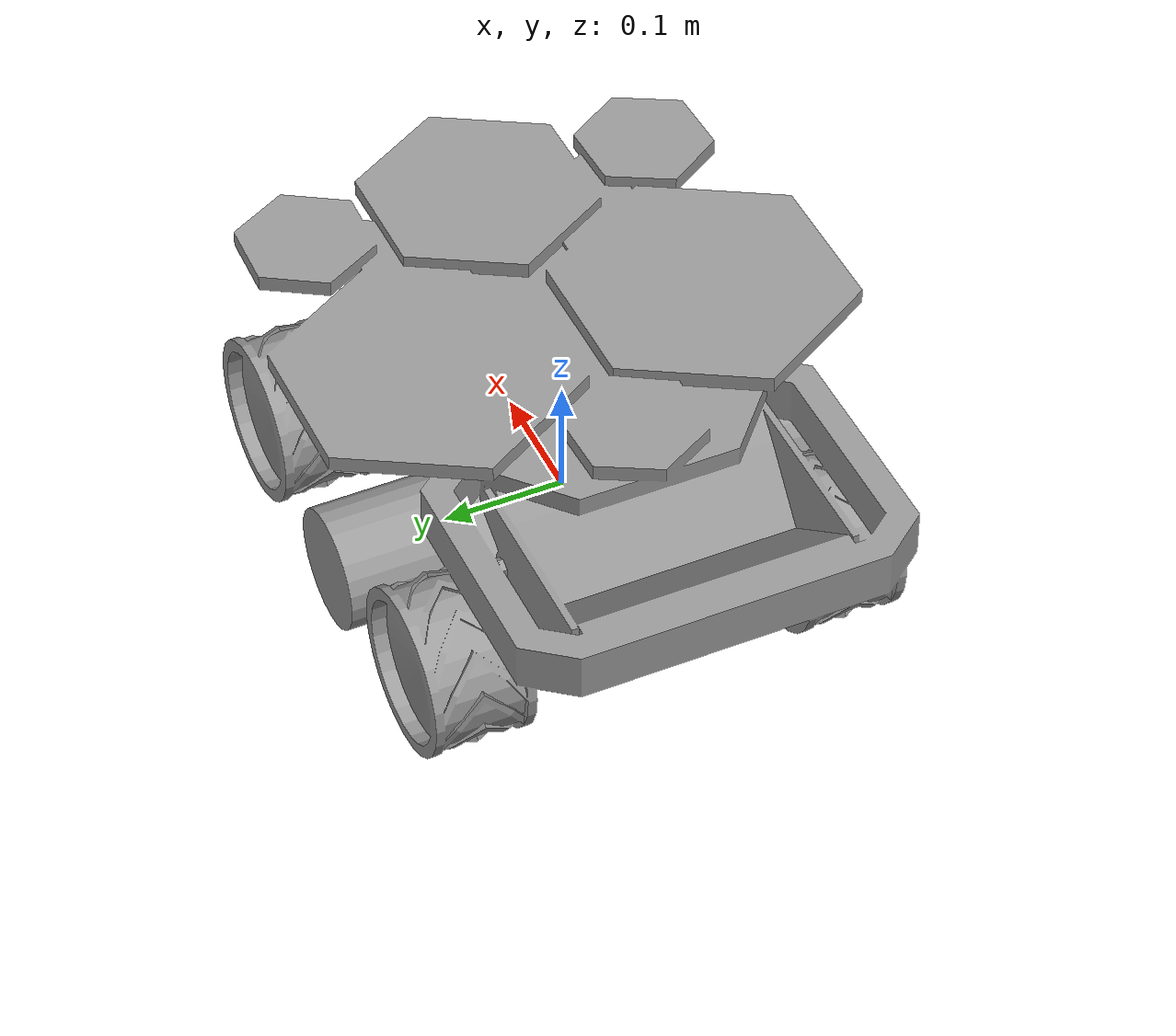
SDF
<?xml version='1.0'?>
<sdf version='1.6'>
  <model name='test'>
    <link name='link_2'>
      <inertial>
        <mass>1</mass>
        <inertia>
          <ixx>0.166667</ixx>
          <ixy>0</ixy>
          <ixz>0</ixz>
          <iyy>0.166667</iyy>
          <iyz>0</iyz>
          <izz>0.166667</izz>
        </inertia>
        <pose frame=''>0 0 0 0 -0 0</pose>
      </inertial>
      <pose frame=''>0 0 0.0875 0 -0 0</pose>
      <gravity>1</gravity>
      <self_collide>0</self_collide>
      <kinematic>0</kinematic>
      <enable_wind>0</enable_wind>
      <collision name='collision_4'>
        <laser_retro>0</laser_retro>
        <max_contacts>10</max_contacts>
        <pose frame=''>-0.03 0 0.01 0 -0 0</pose>
        <geometry>
          <box>
            <size>0.55 0.2 0.2</size>
          </box>
        </geometry>
        <surface>
          <friction>
            <ode>
              <mu>1</mu>
              <mu2>1</mu2>
              <fdir1>0 0 0</fdir1>
              <slip1>0</slip1>
              <slip2>0</slip2>
            </ode>
            <torsional>
              <coefficient>1</coefficient>
              <patch_radius>0</patch_radius>
              <surface_radius>0</surface_radius>
              <use_patch_radius>1</use_patch_radius>
              <ode>
                <slip>0</slip>
              </ode>
            </torsional>
          </friction>
          <bounce>
            <restitution_coefficient>0</restitution_coefficient>
            <threshold>1e+06</threshold>
          </bounce>
          <contact>
            <collide_without_contact>0</collide_without_contact>
            <collide_without_contact_bitmask>1</collide_without_contact_bitmask>
            <collide_bitmask>1</collide_bitmask>
            <ode>
              <soft_cfm>0</soft_cfm>
              <soft_erp>0.2</soft_erp>
              <kp>1e+13</kp>
              <kd>1</kd>
              <max_vel>0.01</max_vel>
              <min_depth>0</min_depth>
            </ode>
            <bullet>
              <split_impulse>1</split_impulse>
              <split_impulse_penetration_threshold>-0.01</split_impulse_penetration_threshold>
              <soft_cfm>0</soft_cfm>
              <soft_erp>0.2</soft_erp>
              <kp>1e+13</kp>
              <kd>1</kd>
            </bullet>
          </contact>
        </surface>
      </collision>
      <collision name='collision'>
        <laser_retro>0</laser_retro>
        <max_contacts>10</max_contacts>
        <pose frame=''>-0.03 0 0.05 0 -0 0</pose>
        <geometry>
          <box>
            <size>0.55 0.4 0.1</size>
          </box>
        </geometry>
        <surface>
          <friction>
            <ode>
              <mu>1</mu>
              <mu2>1</mu2>
              <fdir1>0 0 0</fdir1>
              <slip1>0</slip1>
              <slip2>0</slip2>
            </ode>
            <torsional>
              <coefficient>1</coefficient>
              <patch_radius>0</patch_radius>
              <surface_radius>0</surface_radius>
              <use_patch_radius>1</use_patch_radius>
              <ode>
                <slip>0</slip>
              </ode>
            </torsional>
          </friction>
          <bounce>
            <restitution_coefficient>0</restitution_coefficient>
            <threshold>1e+06</threshold>
          </bounce>
          <contact>
            <collide_without_contact>0</collide_without_contact>
            <collide_without_contact_bitmask>1</collide_without_contact_bitmask>
            <collide_bitmask>1</collide_bitmask>
            <ode>
              <soft_cfm>0</soft_cfm>
              <soft_erp>0.2</soft_erp>
              <kp>1e+13</kp>
              <kd>1</kd>
              <max_vel>0.01</max_vel>
              <min_depth>0</min_depth>
            </ode>
            <bullet>
              <split_impulse>1</split_impulse>
              <split_impulse_penetration_threshold>-0.01</split_impulse_penetration_threshold>
              <soft_cfm>0</soft_cfm>
              <soft_erp>0.2</soft_erp>
              <kp>1e+13</kp>
              <kd>1</kd>
            </bullet>
          </contact>
        </surface>
      </collision>
      <collision name='collision_1'>
        <laser_retro>0</laser_retro>
        <max_contacts>10</max_contacts>
        <pose frame=''>0.17 0 0 0 -0 0</pose>
        <geometry>
          <box>
            <size>0.15 0.4 0.2</size>
          </box>
        </geometry>
        <surface>
          <friction>
            <ode>
              <mu>1</mu>
              <mu2>1</mu2>
              <fdir1>0 0 0</fdir1>
              <slip1>0</slip1>
              <slip2>0</slip2>
            </ode>
            <torsional>
              <coefficient>1</coefficient>
              <patch_radius>0</patch_radius>
              <surface_radius>0</surface_radius>
              <use_patch_radius>1</use_patch_radius>
              <ode>
                <slip>0</slip>
              </ode>
            </torsional>
          </friction>
          <bounce>
            <restitution_coefficient>0</restitution_coefficient>
            <threshold>1e+06</threshold>
          </bounce>
          <contact>
            <collide_without_contact>0</collide_without_contact>
            <collide_without_contact_bitmask>1</collide_without_contact_bitmask>
            <collide_bitmask>1</collide_bitmask>
            <ode>
              <soft_cfm>0</soft_cfm>
              <soft_erp>0.2</soft_erp>
              <kp>1e+13</kp>
              <kd>1</kd>
              <max_vel>0.01</max_vel>
              <min_depth>0</min_depth>
            </ode>
            <bullet>
              <split_impulse>1</split_impulse>
              <split_impulse_penetration_threshold>-0.01</split_impulse_penetration_threshold>
              <soft_cfm>0</soft_cfm>
              <soft_erp>0.2</soft_erp>
              <kp>1e+13</kp>
              <kd>1</kd>
            </bullet>
          </contact>
        </surface>
      </collision>
      <collision name='collision_2'>
        <laser_retro>0</laser_retro>
        <max_contacts>10</max_contacts>
        <pose frame=''>-0.19 0 0 0 -0 0</pose>
        <geometry>
          <box>
            <size>0.23 0.4 0.2</size>
          </box>
        </geometry>
        <surface>
          <friction>
            <ode>
              <mu>1</mu>
              <mu2>1</mu2>
              <fdir1>0 0 0</fdir1>
              <slip1>0</slip1>
              <slip2>0</slip2>
            </ode>
            <torsional>
              <coefficient>1</coefficient>
              <patch_radius>0</patch_radius>
              <surface_radius>0</surface_radius>
              <use_patch_radius>1</use_patch_radius>
              <ode>
                <slip>0</slip>
              </ode>
            </torsional>
          </friction>
          <bounce>
            <restitution_coefficient>0</restitution_coefficient>
            <threshold>1e+06</threshold>
          </bounce>
          <contact>
            <collide_without_contact>0</collide_without_contact>
            <collide_without_contact_bitmask>1</collide_without_contact_bitmask>
            <collide_bitmask>1</collide_bitmask>
            <ode>
              <soft_cfm>0</soft_cfm>
              <soft_erp>0.2</soft_erp>
              <kp>1e+13</kp>
              <kd>1</kd>
              <max_vel>0.01</max_vel>
              <min_depth>0</min_depth>
            </ode>
            <bullet>
              <split_impulse>1</split_impulse>
              <split_impulse_penetration_threshold>-0.01</split_impulse_penetration_threshold>
              <soft_cfm>0</soft_cfm>
              <soft_erp>0.2</soft_erp>
              <kp>1e+13</kp>
              <kd>1</kd>
            </bullet>
          </contact>
        </surface>
      </collision>
    </link>
    <link name='link_3'>
      <inertial>
        <mass>1</mass>
        <inertia>
          <ixx>0.166667</ixx>
          <ixy>0</ixy>
          <ixz>0</ixz>
          <iyy>0.166667</iyy>
          <iyz>0</iyz>
          <izz>0.166667</izz>
        </inertia>
        <pose frame=''>0 0 0 0 -0 0</pose>
      </inertial>
      <pose frame=''>0 0 -0.0625 0 -0 1.57</pose>
      <gravity>1</gravity>
      <self_collide>0</self_collide>
      <kinematic>0</kinematic>
      <enable_wind>0</enable_wind>
      <visual name='visual'>
        <pose frame=''>0 0 0 0 -0 0</pose>
        <geometry>
          <mesh>
            <uri>/home/george/Documents/udacity/robotics/P2-Go-Chase-It/src/my_robot/mars_rover/meshes/rover.dae</uri>
            <scale>0.5 0.5 0.5</scale>
          </mesh>
        </geometry>
        <material>
          <lighting>1</lighting>
          <script>
            <uri>file://media/materials/scripts/gazebo.material</uri>
            <name>Gazebo/Grey</name>
          </script>
          <shader type='pixel'>
            <normal_map>__default__</normal_map>
          </shader>
          <ambient>0.3 0.3 0.3 1</ambient>
          <diffuse>0.7 0.7 0.7 1</diffuse>
          <specular>0.01 0.01 0.01 1</specular>
          <emissive>0 0 0 1</emissive>
        </material>
        <transparency>0</transparency>
        <cast_shadows>1</cast_shadows>
      </visual>
    </link>
    <link name='link_4'>
      <inertial>
        <mass>1</mass>
        <inertia>
          <ixx>0.145833</ixx>
          <ixy>0</ixy>
          <ixz>0</ixz>
          <iyy>0.145833</iyy>
          <iyz>0</iyz>
          <izz>0.125</izz>
        </inertia>
        <pose frame=''>0 0 0 0 -0 0</pose>
      </inertial>
      <pose frame=''>0 0.15 -0.0125 0 -0 0</pose>
      <gravity>1</gravity>
      <self_collide>0</self_collide>
      <kinematic>0</kinematic>
      <enable_wind>0</enable_wind>
      <visual name='visual'>
        <pose frame=''>0 0 0 1.57 -0 0</pose>
        <geometry>
          <cylinder>
            <radius>0.05</radius>
            <length>0.1</length>
          </cylinder>
        </geometry>
        <material>
          <lighting>1</lighting>
          <script>
            <uri>file://media/materials/scripts/gazebo.material</uri>
            <name>Gazebo/Grey</name>
          </script>
          <shader type='pixel'>
            <normal_map>__default__</normal_map>
          </shader>
          <ambient>0.3 0.3 0.3 1</ambient>
          <diffuse>0.7 0.7 0.7 1</diffuse>
          <specular>0.01 0.01 0.01 1</specular>
          <emissive>0 0 0 1</emissive>
        </material>
        <transparency>0</transparency>
        <cast_shadows>1</cast_shadows>
      </visual>
      <collision name='collision'>
        <laser_retro>0</laser_retro>
        <max_contacts>10</max_contacts>
        <pose frame=''>0 0 0 1.57 -0 0</pose>
        <geometry>
          <cylinder>
            <radius>0.05</radius>
            <length>0.1</length>
          </cylinder>
        </geometry>
        <surface>
          <friction>
            <ode>
              <mu>1</mu>
              <mu2>1</mu2>
              <fdir1>0 0 0</fdir1>
              <slip1>0</slip1>
              <slip2>0</slip2>
            </ode>
            <torsional>
              <coefficient>1</coefficient>
              <patch_radius>0</patch_radius>
              <surface_radius>0</surface_radius>
              <use_patch_radius>1</use_patch_radius>
              <ode>
                <slip>0</slip>
              </ode>
            </torsional>
          </friction>
          <bounce>
            <restitution_coefficient>0</restitution_coefficient>
            <threshold>1e+06</threshold>
          </bounce>
          <contact>
            <collide_without_contact>0</collide_without_contact>
            <collide_without_contact_bitmask>1</collide_without_contact_bitmask>
            <collide_bitmask>1</collide_bitmask>
            <ode>
              <soft_cfm>0</soft_cfm>
              <soft_erp>0.2</soft_erp>
              <kp>1e+13</kp>
              <kd>1</kd>
              <max_vel>0.01</max_vel>
              <min_depth>0</min_depth>
            </ode>
            <bullet>
              <split_impulse>1</split_impulse>
              <split_impulse_penetration_threshold>-0.01</split_impulse_penetration_threshold>
              <soft_cfm>0</soft_cfm>
              <soft_erp>0.2</soft_erp>
              <kp>1e+13</kp>
              <kd>1</kd>
            </bullet>
          </contact>
        </surface>
      </collision>
    </link>
    <link name='link_4_clone'>
      <inertial>
        <mass>1</mass>
        <inertia>
          <ixx>0.145833</ixx>
          <ixy>0</ixy>
          <ixz>0</ixz>
          <iyy>0.145833</iyy>
          <iyz>0</iyz>
          <izz>0.125</izz>
        </inertia>
        <pose frame=''>0 0 0 0 -0 0</pose>
      </inertial>
      <pose frame=''>0 -0.15 -0.0125 0 -0 0</pose>
      <gravity>1</gravity>
      <self_collide>0</self_collide>
      <kinematic>0</kinematic>
      <enable_wind>0</enable_wind>
      <visual name='visual'>
        <pose frame=''>0 0 0 1.57 -0 0</pose>
        <geometry>
          <cylinder>
            <radius>0.05</radius>
            <length>0.1</length>
          </cylinder>
        </geometry>
        <material>
          <lighting>1</lighting>
          <script>
            <uri>file://media/materials/scripts/gazebo.material</uri>
            <name>Gazebo/Grey</name>
          </script>
          <shader type='pixel'>
            <normal_map>__default__</normal_map>
          </shader>
          <ambient>0.3 0.3 0.3 1</ambient>
          <diffuse>0.7 0.7 0.7 1</diffuse>
          <specular>0.01 0.01 0.01 1</specular>
          <emissive>0 0 0 1</emissive>
        </material>
        <transparency>0</transparency>
        <cast_shadows>1</cast_shadows>
      </visual>
      <collision name='collision'>
        <laser_retro>0</laser_retro>
        <max_contacts>10</max_contacts>
        <pose frame=''>0 0 0 1.57 -0 0</pose>
        <geometry>
          <cylinder>
            <radius>0.05</radius>
            <length>0.1</length>
          </cylinder>
        </geometry>
        <surface>
          <friction>
            <ode>
              <mu>1</mu>
              <mu2>1</mu2>
              <fdir1>0 0 0</fdir1>
              <slip1>0</slip1>
              <slip2>0</slip2>
            </ode>
            <torsional>
              <coefficient>1</coefficient>
              <patch_radius>0</patch_radius>
              <surface_radius>0</surface_radius>
              <use_patch_radius>1</use_patch_radius>
              <ode>
                <slip>0</slip>
              </ode>
            </torsional>
          </friction>
          <bounce>
            <restitution_coefficient>0</restitution_coefficient>
            <threshold>1e+06</threshold>
          </bounce>
          <contact>
            <collide_without_contact>0</collide_without_contact>
            <collide_without_contact_bitmask>1</collide_without_contact_bitmask>
            <collide_bitmask>1</collide_bitmask>
            <ode>
              <soft_cfm>0</soft_cfm>
              <soft_erp>0.2</soft_erp>
              <kp>1e+13</kp>
              <kd>1</kd>
              <max_vel>0.01</max_vel>
              <min_depth>0</min_depth>
            </ode>
            <bullet>
              <split_impulse>1</split_impulse>
              <split_impulse_penetration_threshold>-0.01</split_impulse_penetration_threshold>
              <soft_cfm>0</soft_cfm>
              <soft_erp>0.2</soft_erp>
              <kp>1e+13</kp>
              <kd>1</kd>
            </bullet>
          </contact>
        </surface>
      </collision>
    </link>
    <static>0</static>
    <allow_auto_disable>1</allow_auto_disable>
  </model>
</sdf>
